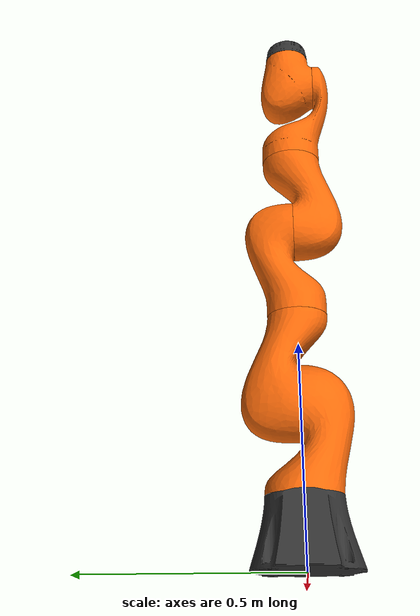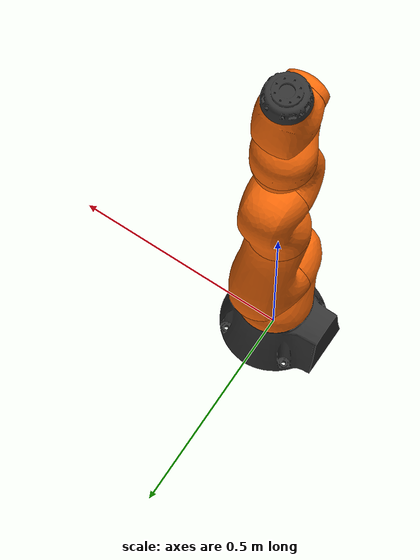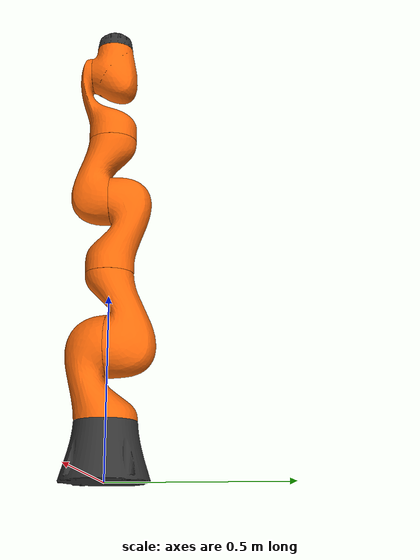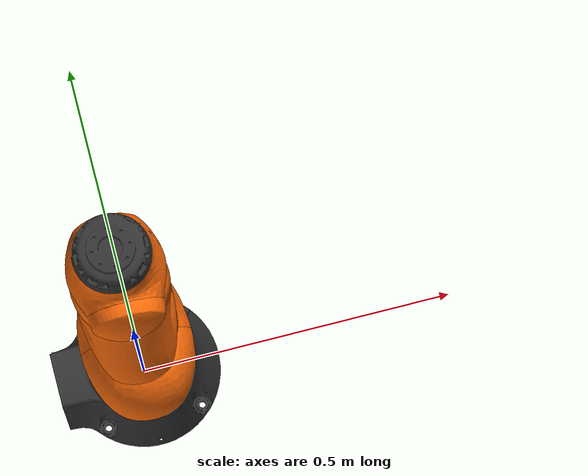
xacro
<?xml version="1.0"?>
<robot name="iiwa" xmlns:xacro="http://www.ros.org/wiki/xacro">
  <!-- Import Rviz colors -->
  <xacro:include filename="$(find iiwa_description)/urdf/materials.xacro" />
  <!--Import the lbr iiwa macro -->
  <xacro:include filename="$(find iiwa_description)/urdf/iiwa14.xacro"/>

  <xacro:arg name="hardware_interface" default="PositionJointInterface"/>
  <xacro:arg name="robot_name" default="iiwa"/>
  <xacro:arg name="origin_xyz" default="0 0 0"/>
  <xacro:arg name="origin_rpy" default="0 0 0"/>

  <!-- Fix to world just for testing -->
  <link name="world"/>

  <!--iiwa-->
  <xacro:iiwa14 hardware_interface="$(arg hardware_interface)" robot_name="$(arg robot_name)" parent="world">
    <origin xyz="$(arg origin_xyz)" rpy="$(arg origin_rpy)" />
  </xacro:iiwa14>

</robot>

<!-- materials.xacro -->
<robot>

  <material name="Black">
    <color rgba="0.0 0.0 0.0 1.0"/>
  </material>

  <material name="Blue">
    <color rgba="0.0 0.0 0.8 1.0"/>
  </material>

  <material name="Green">
    <color rgba="0.0 0.8 0.0 1.0"/>
  </material>

  <material name="Grey">
    <color rgba="0.2 0.2 0.2 1.0"/>
  </material>

  <material name="Orange">
    <color rgba="${255/255} ${108/255} ${10/255} 1.0"/>
  </material>

  <material name="Brown">
    <color rgba="${222/255} ${207/255} ${195/255} 1.0"/>
  </material>

  <material name="Red">
    <color rgba="0.8 0.0 0.0 1.0"/>
  </material>

  <material name="White">
    <color rgba="1.0 1.0 1.0 1.0"/>
  </material>

</robot>

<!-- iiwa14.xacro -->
<robot xmlns:xacro="http://www.ros.org/wiki/xacro">

  <!-- Import all Gazebo-customization elements, including Gazebo colors -->
  <xacro:include filename="$(find iiwa_description)/urdf/iiwa.gazebo.xacro" />
  <!-- Import Transmissions -->
  <xacro:include filename="$(find iiwa_description)/urdf/iiwa.transmission.xacro" />
  <!-- Include Utilities -->
  <xacro:include filename="$(find iiwa_description)/urdf/utilities.xacro" />

  <!-- some constants -->
  <xacro:property name="safety_controller_k_pos" value="100" />
  <xacro:property name="safety_controller_k_vel" value="2" />
  <xacro:property name="joint_damping" value="0.5" />
  <xacro:property name="max_effort" value="300"/>
  <xacro:property name="max_velocity" value="10"/>

  <xacro:macro name="iiwa14" params="parent hardware_interface robot_name *origin">

    <!--joint between {parent} and link_0-->
    <joint name="${parent}_${robot_name}_joint" type="fixed">
      <xacro:insert_block name="origin"/>
      <parent link="${parent}"/>
      <child link="${robot_name}_link_0"/>
    </joint>

    <link name="${robot_name}_link_0">
      <inertial>
        <origin xyz="-0.1 0 0.07" rpy="0 0 0"/>
        <mass value="5"/>
        <inertia ixx="0.05"  ixy="0"  ixz="0" iyy="0.06" iyz="0" izz="0.03" />
      </inertial>

      <visual>
        <origin xyz="0 0 0" rpy="0 0 0"/>
        <geometry>
          <mesh filename="package://iiwa_description/meshes/iiwa14/visual/link_0.stl"/>
        </geometry>
        <material name="Grey"/>
      </visual>

      <collision>
        <origin xyz="0 0 0" rpy="0 0 0"/>
        <geometry>
          <mesh filename="package://iiwa_description/meshes/iiwa14/collision/link_0.stl"/>
        </geometry>
      </collision>

    </link>

    <!-- joint between link_0 and link_1 -->
    <joint name="${robot_name}_joint_1" type="revolute">
      <parent link="${robot_name}_link_0"/>
      <child link="${robot_name}_link_1"/>
      <origin xyz="0 0 0.1575" rpy="0 0 0"/>
      <axis xyz="0 0 1"/>
      <limit lower="${-170 * PI / 180}" upper="${170 * PI / 180}"
             effort="${max_effort}" velocity="${max_velocity}" />
      <safety_controller soft_lower_limit="${-168 * PI / 180}"
                         soft_upper_limit="${168 * PI / 180}"
                         k_position="${safety_controller_k_pos}"
                         k_velocity="${safety_controller_k_vel}"/>
      <dynamics damping="${joint_damping}"/>
    </joint>

    <link name="${robot_name}_link_1">
      <inertial>
        <origin xyz="0 -0.03 0.12" rpy="0 0 0"/>
        <mass value="4"/>
        <inertia ixx="0.1"  ixy="0"  ixz="0" iyy="0.09" iyz="0" izz="0.02" />
      </inertial>

      <visual>
        <origin xyz="0 0 0" rpy="0 0 0"/>
        <geometry>
          <mesh filename="package://iiwa_description/meshes/iiwa14/visual/link_1.stl"/>
        </geometry>
        <material name="Orange"/>
      </visual>

      <collision>
        <origin xyz="0 0 0" rpy="0 0 0"/>
        <geometry>
          <mesh filename="package://iiwa_description/meshes/iiwa14/collision/link_1.stl"/>
        </geometry>
      </collision>
    </link>

    <!-- joint between link_1 and link_2 -->
    <joint name="${robot_name}_joint_2" type="revolute">
      <parent link="${robot_name}_link_1"/>
      <child link="${robot_name}_link_2"/>
      <origin xyz="0 0 0.2025" rpy="${PI / 2}   0 ${PI}"/>
      <axis xyz="0 0 1"/>
      <limit lower="${-120 * PI / 180}" upper="${120 * PI / 180}"
             effort="${max_effort}" velocity="${max_velocity}" />
      <safety_controller soft_lower_limit="${-118 * PI / 180}"
                         soft_upper_limit="${118 * PI / 180}"
                         k_position="${safety_controller_k_pos}"
                         k_velocity="${safety_controller_k_vel}"/>
      <dynamics damping="${joint_damping}"/>
    </joint>

    <link name="${robot_name}_link_2">
      <inertial>
        <origin xyz="0.0003 0.059 0.042" rpy="0 0 0"/>
        <mass value="4"/>
        <inertia ixx="0.05"  ixy="0"  ixz="0" iyy="0.018" iyz="0" izz="0.044" />
      </inertial>

      <visual>
        <origin xyz="0 0 0" rpy="0 0 0"/>
        <geometry>
          <mesh filename="package://iiwa_description/meshes/iiwa14/visual/link_2.stl"/>
        </geometry>
        <material name="Orange"/>
      </visual>

      <collision>
        <origin xyz="0 0 0" rpy="0 0 0"/>
        <geometry>
          <mesh filename="package://iiwa_description/meshes/iiwa14/collision/link_2.stl"/>
        </geometry>
      </collision>
    </link>

    <!-- joint between link_2 and link_3 -->
    <joint name="${robot_name}_joint_3" type="revolute">
      <parent link="${robot_name}_link_2"/>
      <child link="${robot_name}_link_3"/>
      <origin xyz="0 0.2045 0" rpy="${PI / 2} 0 ${PI}"/>
      <axis xyz="0 0 1"/>
      <limit lower="${-170 * PI / 180}" upper="${170 * PI / 180}"
             effort="${max_effort}" velocity="${max_velocity}" />
      <safety_controller soft_lower_limit="${-168 * PI / 180}"
                         soft_upper_limit="${168 * PI / 180}"
                         k_position="${safety_controller_k_pos}"
                         k_velocity="${safety_controller_k_vel}"/>
      <dynamics damping="${joint_damping}"/>
    </joint>

    <link name="${robot_name}_link_3">
      <inertial>
        <origin xyz="0 0.03 0.13" rpy="0 0 0"/>
        <mass value="3"/>
        <inertia ixx="0.08"  ixy="0"  ixz="0" iyy="0.075" iyz="0" izz="0.01" />
      </inertial>

      <visual>
        <origin xyz="0 0 0" rpy="0 0 0"/>
        <geometry>
          <mesh filename="package://iiwa_description/meshes/iiwa14/visual/link_3.stl"/>
        </geometry>
        <material name="Orange"/>
      </visual>

      <collision>
        <origin xyz="0 0 0" rpy="0 0 0"/>
        <geometry>
          <mesh filename="package://iiwa_description/meshes/iiwa14/collision/link_3.stl"/>
        </geometry>
      </collision>
    </link>

    <!-- joint between link_3 and link_4 -->
    <joint name="${robot_name}_joint_4" type="revolute">
      <parent link="${robot_name}_link_3"/>
      <child link="${robot_name}_link_4"/>
      <origin xyz="0 0 0.2155" rpy="${PI / 2} 0 0"/>
      <axis xyz="0 0 1"/>
      <limit lower="${-120 * PI / 180}" upper="${120 * PI / 180}"
             effort="${max_effort}" velocity="${max_velocity}" />
      <safety_controller soft_lower_limit="${-118 * PI / 180}"
                         soft_upper_limit="${118 * PI / 180}"
                         k_position="${safety_controller_k_pos}"
                         k_velocity="${safety_controller_k_vel}"/>
      <dynamics damping="${joint_damping}"/>
    </joint>

    <link name="${robot_name}_link_4">
      <inertial>
        <origin xyz="0 0.067 0.034" rpy="0 0 0"/>
        <mass value="2.7"/>
        <inertia ixx="0.03"  ixy="0"  ixz="0" iyy="0.01" iyz="0" izz="0.029" />
      </inertial>

      <visual>
        <origin xyz="0 0 0" rpy="0 0 0"/>
        <geometry>
          <mesh filename="package://iiwa_description/meshes/iiwa14/visual/link_4.stl"/>
        </geometry>
        <material name="Orange"/>
      </visual>

      <collision>
        <origin xyz="0 0 0" rpy="0 0 0"/>
        <geometry>
          <mesh filename="package://iiwa_description/meshes/iiwa14/collision/link_4.stl"/>
        </geometry>
      </collision>
    </link>

    <!-- joint between link_4 and link_5 -->
    <joint name="${robot_name}_joint_5" type="revolute">
      <parent link="${robot_name}_link_4"/>
      <child link="${robot_name}_link_5"/>
      <origin xyz="0 0.1845 0" rpy="${-PI / 2} ${PI} 0"/>
      <axis xyz="0 0 1"/>
      <limit lower="${-170 * PI / 180}" upper="${170 * PI / 180}"
             effort="${max_effort}" velocity="${max_velocity}" />
      <safety_controller soft_lower_limit="${-168 * PI / 180}"
                         soft_upper_limit="${168 * PI / 180}"
                         k_position="${safety_controller_k_pos}"
                         k_velocity="${safety_controller_k_vel}"/>
      <dynamics damping="${joint_damping}"/>
    </joint>

    <link name="${robot_name}_link_5">
      <inertial>
        <origin xyz="0.0001 0.021 0.076" rpy="0 0 0"/>
        <mass value="1.7"/>
        <inertia ixx="0.02"  ixy="0"  ixz="0" iyy="0.018" iyz="0" izz="0.005" />
      </inertial>

      <visual>
        <origin xyz="0 0 0" rpy="0 0 0"/>
        <geometry>
          <mesh filename="package://iiwa_description/meshes/iiwa14/visual/link_5.stl"/>
        </geometry>
        <material name="Orange"/>
      </visual>

      <collision>
        <origin xyz="0 0 0" rpy="0 0 0"/>
        <geometry>
          <mesh filename="package://iiwa_description/meshes/iiwa14/collision/link_5.stl"/>
        </geometry>
      </collision>
    </link>

    <!-- joint between link_5 and link_6 -->
    <joint name="${robot_name}_joint_6" type="revolute">
      <parent link="${robot_name}_link_5"/>
      <child link="${robot_name}_link_6"/>
      <origin xyz="0 0 0.2155" rpy="${PI / 2} 0 0"/>
      <axis xyz="0 0 1"/>
      <limit lower="${-120 * PI / 180}" upper="${120 * PI / 180}"
             effort="${max_effort}" velocity="${max_velocity}" />
      <safety_controller soft_lower_limit="${-118 * PI / 180}"
                         soft_upper_limit="${118 * PI / 180}"
                         k_position="${safety_controller_k_pos}"
                         k_velocity="${safety_controller_k_vel}"/>
      <dynamics damping="${joint_damping}"/>
    </joint>

    <link name="${robot_name}_link_6">
      <inertial>
        <origin xyz="0 0.0006 0.0004" rpy="0 0 0"/>
        <mass value="1.8"/>
        <inertia ixx="0.005"  ixy="0"  ixz="0" iyy="0.0036" iyz="0" izz="0.0047" />
      </inertial>

      <visual>
        <origin xyz="0 0 0" rpy="0 0 0"/>
        <geometry>
          <mesh filename="package://iiwa_description/meshes/iiwa14/visual/link_6.stl"/>
        </geometry>
        <material name="Orange"/>
      </visual>

      <collision>
        <origin xyz="0 0 0" rpy="0 0 0"/>
        <geometry>
          <mesh filename="package://iiwa_description/meshes/iiwa14/collision/link_6.stl"/>
        </geometry>
      </collision>
    </link>

    <!-- joint between link_6 and link_7 -->
    <joint name="${robot_name}_joint_7" type="revolute">
      <parent link="${robot_name}_link_6"/>
      <child link="${robot_name}_link_7"/>
      <origin xyz="0 0.081 0" rpy="${- PI / 2} ${PI} 0"/>
      <axis xyz="0 0 1"/>
      <limit lower="${-175 * PI / 180}" upper="${175 * PI / 180}"
             effort="${max_effort}" velocity="${max_velocity}" />
      <safety_controller soft_lower_limit="${-173 * PI / 180}"
                         soft_upper_limit="${173 * PI / 180}"
                         k_position="${safety_controller_k_pos}"
                         k_velocity="${safety_controller_k_vel}"/>
      <dynamics damping="${joint_damping}"/>
    </joint>

    <link name="${robot_name}_link_7">
      <inertial>
        <origin xyz="0 0 0.02" rpy="0 0 0"/>
        <mass value="0.3"/>
        <inertia ixx="0.001"  ixy="0"  ixz="0" iyy="0.001" iyz="0" izz="0.001" />
      </inertial>

      <visual>
        <origin xyz="0 0 0" rpy="0 0 0"/>
        <geometry>
          <mesh filename="package://iiwa_description/meshes/iiwa14/visual/link_7.stl"/>
        </geometry>
        <material name="Grey"/>
      </visual>

      <collision>
        <origin xyz="0 0 0" rpy="0 0 0"/>
        <geometry>
          <mesh filename="package://iiwa_description/meshes/iiwa14/collision/link_7.stl"/>
        </geometry>
      </collision>
    </link>

    <joint name="${robot_name}_joint_ee" type="fixed">
      <parent link="${robot_name}_link_7"/>
      <child link="${robot_name}_link_ee"/>
      <origin xyz="0 0 0.045" rpy="0 0 0"/>
    </joint>

    <link name="${robot_name}_link_ee">
    </link>

    <!--Extensions -->
    <xacro:iiwa_gazebo robot_name="${robot_name}" />
    <xacro:iiwa_transmission hardware_interface="${hardware_interface}"/>

  </xacro:macro>

</robot>

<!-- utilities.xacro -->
<robot name="iiwa" xmlns:xacro="http://www.ros.org/wiki/xacro">

  <xacro:property name="PI" value="3.1415926535897931"/>

<!-- The following macros are adapted from the LWR 4 definitions of the RCPRG - https://github.com/RCPRG-ros-pkg/lwr_robot -->
  <!--Little helper macros to define the inertia matrix needed for links.-->
  <!--Cuboid-->
  <xacro:macro name="cuboid_inertia" params="width height length mass">
    <inertia ixx="${mass * (height * height + length * length) / 12)}"
             iyy="${mass * (width * width + length * length) / 12)}"
             izz="${mass * (width * width + height * height) / 12)}"
             ixy="0" iyz="0" ixz="0"/>
  </xacro:macro>

  <!--Cylinder: length is along the y-axis! -->
  <xacro:macro name="cylinder_inertia" params="radius length mass">
    <inertia ixx="${mass * (3 * radius * radius + length * length) / 12)}"
             iyy="${mass * radius* radius / 2)}"
             izz="${mass * (3 * radius * radius + length * length) / 12)}"
             ixy="0" iyz="0" ixz="0"/>
  </xacro:macro>

</robot>
